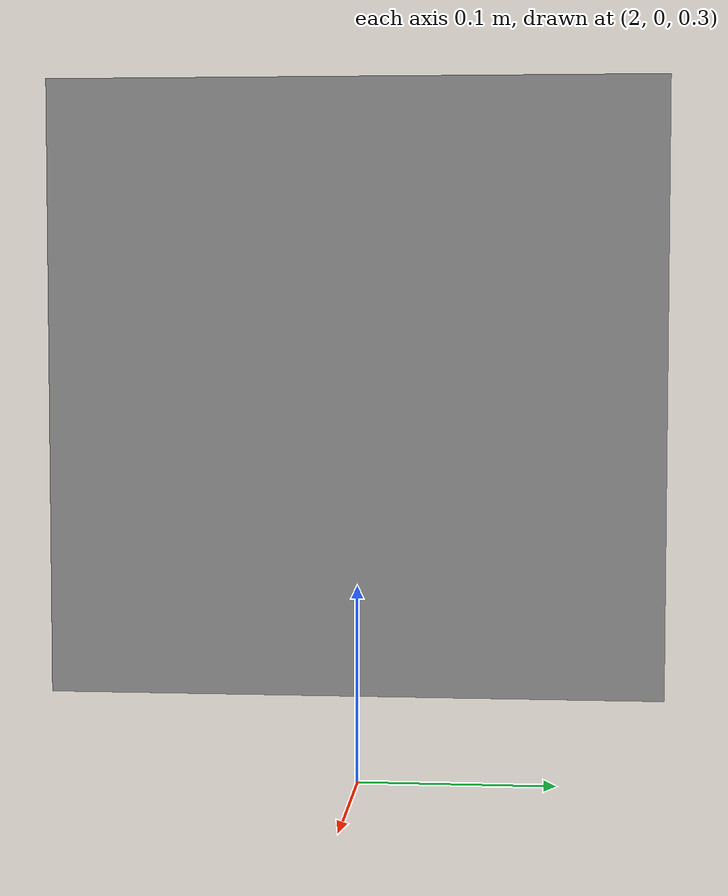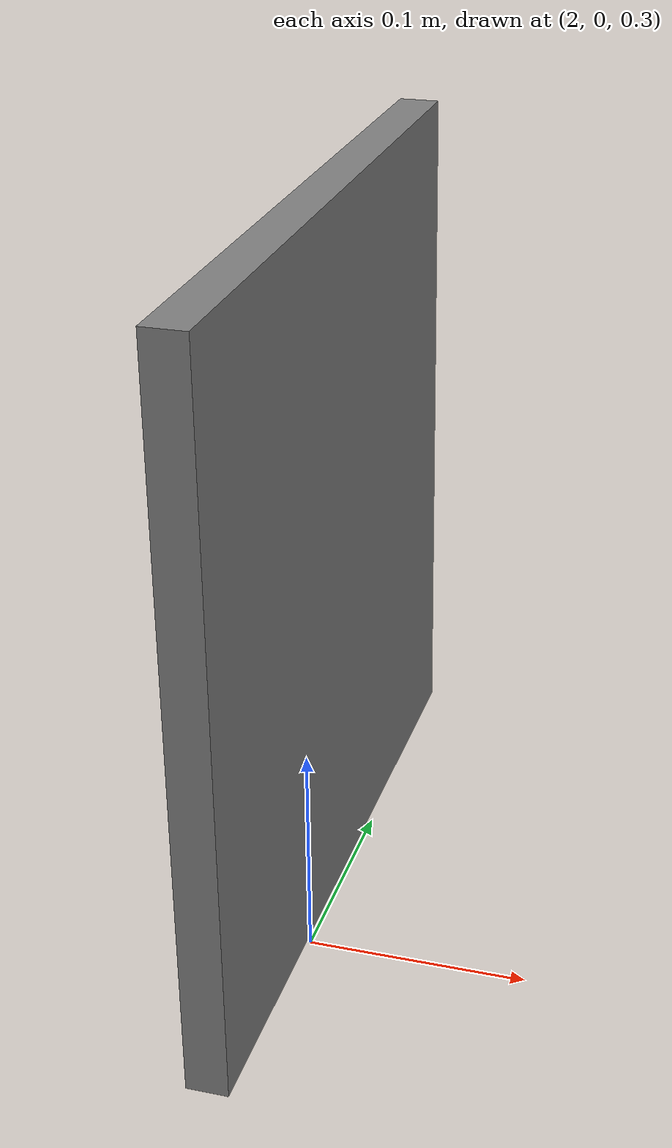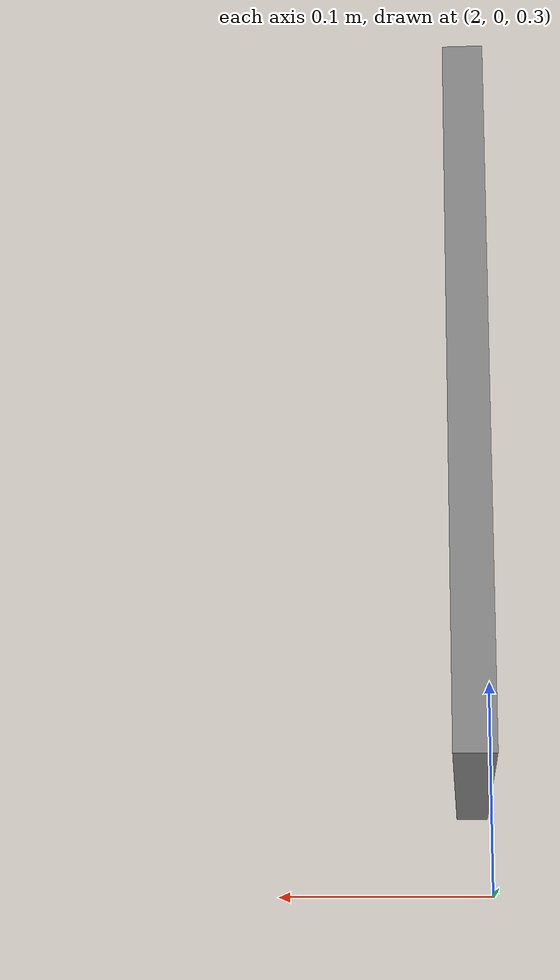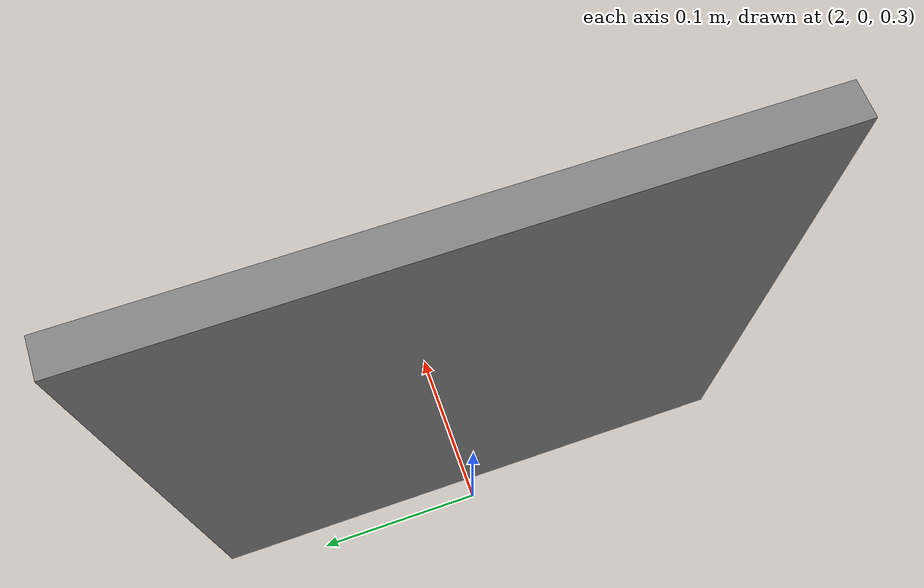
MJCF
<mujoco model="target">
    <compiler angle="degree" inertiafromgeom="true"/>

    <asset>
        <material name="target_mat" texture="target_texture" rgba="1 1 1 1" />
        <texture name="target_texture" type="2d" builtin="checker" rgb1="0.8 0.8 0.8" rgb2="0.2 0.2 0.2" width="100" height="100" mark="cross" markrgb="1 0 0" />

        <mesh name="target_mesh" file="Part Studio 1.stl" scale="0.3 0.1 0.3"/>

    </asset>

    <worldbody>
        <body name="target" pos="2 0 0.5" gravcomp="0">
            <joint name="target_joint" type="free"/>
            <geom name="target_geom" type="mesh" mesh="target_mesh" material="target_mat" contype="1" conaffinity="1" quat="0.707 0 0 0.707"/>
            <inertial mass="0" pos="0 0 0"/>
        </body>
    </worldbody>
</mujoco>
